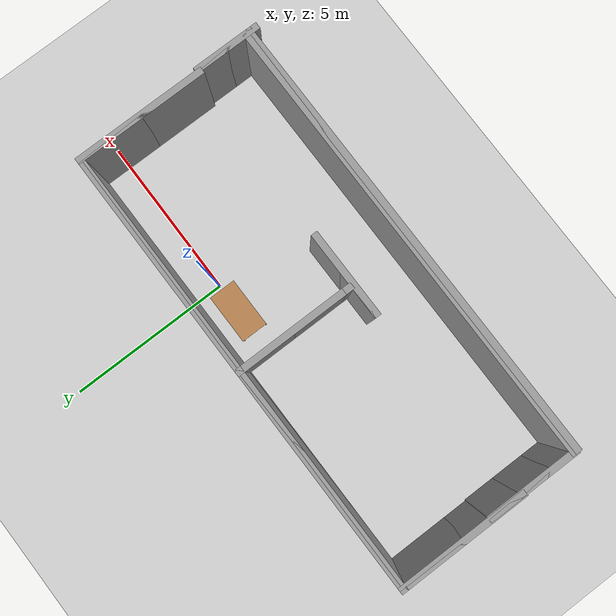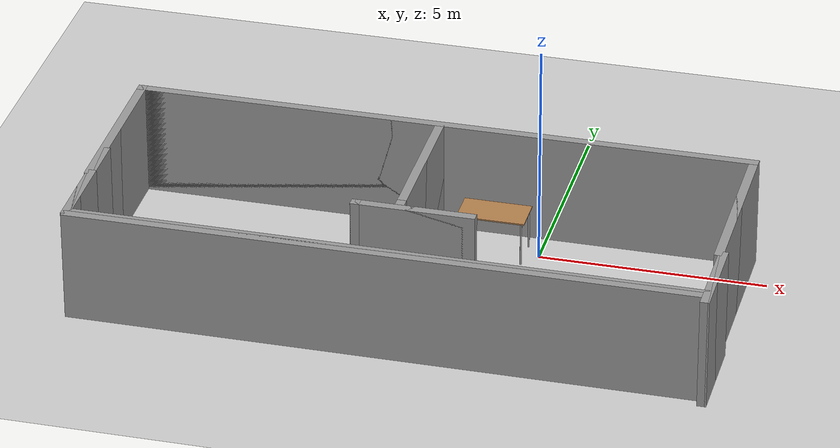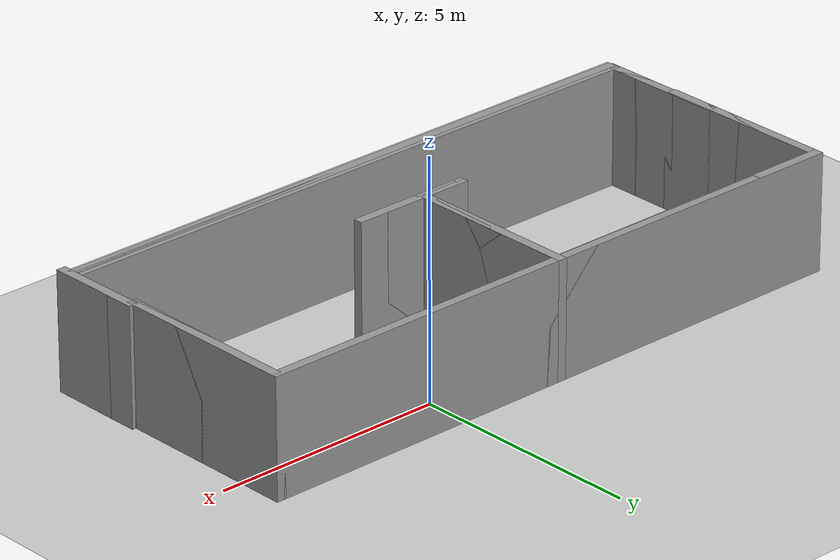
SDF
<sdf version="1.4">
 <world name="default">
  <light name="sun" type="directional">
   <pose>0 0 10 0 -0 0</pose>
   <diffuse>0.8 0.8 0.8 1</diffuse>
   <specular>0.2 0.2 0.2 1</specular>
   <attenuation>
    <range>1000</range>
    <constant>0.9</constant>
    <linear>0.01</linear>
    <quadratic>0.001</quadratic>
   </attenuation>
   <direction>-0.5 0.1 -0.9</direction>
  </light>
  <model name="ground_plane">
   <static>1</static>
   <link name="link">
    <collision name="collision">
     <geometry><plane><normal>0 0 1</normal><size>100 100</size></plane></geometry>
     <surface><friction><ode><mu>100</mu><mu2>50</mu2></ode></friction></surface>
    </collision>
    <visual name="visual">
     <cast_shadows>0</cast_shadows>
     <geometry><plane><normal>0 0 1</normal><size>100 100</size></plane></geometry>
     <material>
      <script><uri>file://media/materials/scripts/gazebo.material</uri><name>Gazebo/Grey</name></script>
     </material>
    </visual>
    <velocity_decay><linear>0</linear><angular>0</angular></velocity_decay>
   </link>
  </model>
  <physics type="ode">
   <max_step_size>0.001</max_step_size>
   <real_time_factor>1</real_time_factor>
   <real_time_update_rate>1000</real_time_update_rate>
   <gravity>0 0 -9.8</gravity>
  </physics>
  <scene><ambient>0.4 0.4 0.4 1</ambient><background>0.7 0.7 0.7 1</background><shadows>1</shadows></scene>
  <spherical_coordinates>
   <surface_model>EARTH_WGS84</surface_model>
   <latitude_deg>0</latitude_deg>
   <longitude_deg>0</longitude_deg>
   <elevation>0</elevation>
   <heading_deg>0</heading_deg>
  </spherical_coordinates>
  <model name="warehouse2">
   <link name="Wall_0">
    <collision name="Wall_0_Collision">
     <geometry><box><size>3.98135 0.2 2.5</size></box></geometry>
     <pose>0 0 1.25 0 -0 0</pose>
    </collision>
    <visual name="Wall_0_Visual">
     <pose>0 0 1.25 0 -0 0</pose>
     <geometry><box><size>3.98135 0.2 2.5</size></box></geometry>
     <material>
      <script><uri>file://media/materials/scripts/gazebo.material</uri><name>Gazebo/Grey</name></script>
     </material>
    </visual>
    <velocity_decay><linear>0</linear><angular>0</angular></velocity_decay>
    <pose>-9.14371 -1.01602 0 0 0 -1.5708</pose>
   </link>
   <link name="Wall_1">
    <collision name="Wall_1_Collision">
     <geometry><box><size>3.98135 0.2 2.5</size></box></geometry>
     <pose>0 0 1.25 0 -0 0</pose>
    </collision>
    <visual name="Wall_1_Visual">
     <pose>0 0 1.25 0 -0 0</pose>
     <geometry><box><size>3.98135 0.2 2.5</size></box></geometry>
     <material>
      <script><uri>file://media/materials/scripts/gazebo.material</uri><name>Gazebo/Grey</name></script>
     </material>
    </visual>
    <velocity_decay><linear>0</linear><angular>0</angular></velocity_decay>
    <pose>-9.14371 -1.01602 0 0 -0 1.5708</pose>
   </link>
   <link name="Wall_11">
    <collision name="Wall_11_Collision">
     <geometry><box><size>1.87581 0.2 2.5</size></box></geometry>
     <pose>0 0 1.25 0 -0 0</pose>
    </collision>
    <visual name="Wall_11_Visual">
     <pose>0 0 1.25 0 -0 0</pose>
     <geometry><box><size>1.87581 0.2 2.5</size></box></geometry>
     <material>
      <script><uri>file://media/materials/scripts/gazebo.material</uri><name>Gazebo/Grey</name></script>
     </material>
    </visual>
    <velocity_decay><linear>0</linear><angular>0</angular></velocity_decay>
    <pose>-9.11487 -3.77513 0 0 0 -1.5708</pose>
   </link>
   <link name="Wall_12">
    <collision name="Wall_12_Collision">
     <geometry><box><size>1.87581 0.2 2.5</size></box></geometry>
     <pose>0 0 1.25 0 -0 0</pose>
    </collision>
    <visual name="Wall_12_Visual">
     <pose>0 0 1.25 0 -0 0</pose>
     <geometry><box><size>1.87581 0.2 2.5</size></box></geometry>
     <material>
      <script><uri>file://media/materials/scripts/gazebo.material</uri><name>Gazebo/Grey</name></script>
     </material>
    </visual>
    <velocity_decay><linear>0</linear><angular>0</angular></velocity_decay>
    <pose>-9.11487 -3.77513 0 0 -0 1.5708</pose>
   </link>
   <link name="Wall_13">
    <collision name="Wall_13_Collision">
     <geometry><box><size>1.18421 0.2 2.5</size></box></geometry>
     <pose>0 0 1.25 0 -0 0</pose>
    </collision>
    <visual name="Wall_13_Visual">
     <pose>0 0 1.25 0 -0 0</pose>
     <geometry><box><size>1.18421 0.2 2.5</size></box></geometry>
     <material>
      <script><uri>file://media/materials/scripts/gazebo.material</uri><name>Gazebo/Grey</name></script>
     </material>
    </visual>
    <velocity_decay><linear>0</linear><angular>0</angular></velocity_decay>
    <pose>-9.11487 -2.44512 0 0 -0 1.5708</pose>
   </link>
   <link name="Wall_15">
    <collision name="Wall_15_Collision">
     <geometry><box><size>2.06201 0.2 2.5</size></box></geometry>
     <pose>0 0 1.25 0 -0 0</pose>
    </collision>
    <visual name="Wall_15_Visual">
     <pose>0 0 1.25 0 -0 0</pose>
     <geometry><box><size>2.06201 0.2 2.5</size></box></geometry>
     <material>
      <script><uri>file://media/materials/scripts/gazebo.material</uri><name>Gazebo/Grey</name></script>
     </material>
    </visual>
    <velocity_decay><linear>0</linear><angular>0</angular></velocity_decay>
    <pose>4.55764 -3.94803 0 0 0 -1.5708</pose>
   </link>
   <link name="Wall_16">
    <collision name="Wall_16_Collision">
     <geometry><box><size>2.06201 0.2 2.5</size></box></geometry>
     <pose>0 0 1.25 0 -0 0</pose>
    </collision>
    <visual name="Wall_16_Visual">
     <pose>0 0 1.25 0 -0 0</pose>
     <geometry><box><size>2.06201 0.2 2.5</size></box></geometry>
     <material>
      <script><uri>file://media/materials/scripts/gazebo.material</uri><name>Gazebo/Grey</name></script>
     </material>
    </visual>
    <velocity_decay><linear>0</linear><angular>0</angular></velocity_decay>
    <pose>4.55764 -3.94803 0 0 -0 1.5708</pose>
   </link>
   <link name="Wall_17">
    <collision name="Wall_17_Collision">
     <geometry><box><size>2.06201 0.2 2.5</size></box></geometry>
     <pose>0 0 1.25 0 -0 0</pose>
    </collision>
    <visual name="Wall_17_Visual">
     <pose>0 0 1.25 0 -0 0</pose>
     <geometry><box><size>2.06201 0.2 2.5</size></box></geometry>
     <material>
      <script><uri>file://media/materials/scripts/gazebo.material</uri><name>Gazebo/Grey</name></script>
     </material>
    </visual>
    <velocity_decay><linear>0</linear><angular>0</angular></velocity_decay>
    <pose>4.55764 -3.94803 0 0 0 -1.5708</pose>
   </link>
   <link name="Wall_19">
    <collision name="Wall_19_Collision">
     <geometry><box><size>2.70042 0.2 2.5</size></box></geometry>
     <pose>0 0 1.25 0 -0 0</pose>
    </collision>
    <visual name="Wall_19_Visual">
     <pose>0 0 1.25 0 -0 0</pose>
     <geometry><box><size>2.70042 0.2 2.5</size></box></geometry>
     <material>
      <script><uri>file://media/materials/scripts/gazebo.material</uri><name>Gazebo/Grey</name></script>
     </material>
    </visual>
    <velocity_decay><linear>0</linear><angular>0</angular></velocity_decay>
    <pose>-2.09241 -2.77762 0 0 -0 0</pose>
   </link>
   <link name="Wall_2">
    <collision name="Wall_2_Collision">
     <geometry><box><size>13.8169 0.2 2.5</size></box></geometry>
     <pose>0 0 1.25 0 -0 0</pose>
    </collision>
    <visual name="Wall_2_Visual">
     <pose>0 0 1.25 0 -0 0</pose>
     <geometry><box><size>13.8169 0.2 2.5</size></box></geometry>
     <material>
      <script><uri>file://media/materials/scripts/gazebo.material</uri><name>Gazebo/Grey</name></script>
     </material>
    </visual>
    <velocity_decay><linear>0</linear><angular>0</angular></velocity_decay>
    <pose>-2.33527 0.874656 0 0 -0 0</pose>
   </link>
   <link name="Wall_20">
    <collision name="Wall_20_Collision">
     <geometry><box><size>2.70042 0.2 2.5</size></box></geometry>
     <pose>0 0 1.25 0 -0 0</pose>
    </collision>
    <visual name="Wall_20_Visual">
     <pose>0 0 1.25 0 -0 0</pose>
     <geometry><box><size>2.70042 0.2 2.5</size></box></geometry>
     <material>
      <script><uri>file://media/materials/scripts/gazebo.material</uri><name>Gazebo/Grey</name></script>
     </material>
    </visual>
    <velocity_decay><linear>0</linear><angular>0</angular></velocity_decay>
    <pose>-2.09241 -2.77762 0 0 -0 3.14159</pose>
   </link>
   <link name="Wall_21">
    <collision name="Wall_21_Collision">
     <geometry><box><size>0.2 0.2 2.5</size></box></geometry>
     <pose>0 0 1.25 0 -0 0</pose>
    </collision>
    <visual name="Wall_21_Visual">
     <pose>0 0 1.25 0 -0 0</pose>
     <geometry><box><size>0.2 0.2 2.5</size></box></geometry>
     <material>
      <script><uri>file://media/materials/scripts/gazebo.material</uri><name>Gazebo/Grey</name></script>
     </material>
    </visual>
    <velocity_decay><linear>0</linear><angular>0</angular></velocity_decay>
    <pose>-3.34262 -2.77762 0 0 -0 0</pose>
   </link>
   <link name="Wall_22">
    <collision name="Wall_22_Collision">
     <geometry><box><size>0.2 0.2 2.5</size></box></geometry>
     <pose>0 0 1.25 0 -0 0</pose>
    </collision>
    <visual name="Wall_22_Visual">
     <pose>0 0 1.25 0 -0 0</pose>
     <geometry><box><size>0.2 0.2 2.5</size></box></geometry>
     <material>
      <script><uri>file://media/materials/scripts/gazebo.material</uri><name>Gazebo/Grey</name></script>
     </material>
    </visual>
    <velocity_decay><linear>0</linear><angular>0</angular></velocity_decay>
    <pose>-3.34262 -2.77762 0 0 -0 0</pose>
   </link>
   <link name="Wall_23">
    <collision name="Wall_23_Collision">
     <geometry><box><size>0.2 0.2 2.5</size></box></geometry>
     <pose>0 0 1.25 0 -0 0</pose>
    </collision>
    <visual name="Wall_23_Visual">
     <pose>0 0 1.25 0 -0 0</pose>
     <geometry><box><size>0.2 0.2 2.5</size></box></geometry>
     <material>
      <script><uri>file://media/materials/scripts/gazebo.material</uri><name>Gazebo/Grey</name></script>
     </material>
    </visual>
    <velocity_decay><linear>0</linear><angular>0</angular></velocity_decay>
    <pose>-3.34262 -2.77762 0 0 -0 0</pose>
   </link>
   <link name="Wall_25">
    <collision name="Wall_25_Collision">
     <geometry><box><size>13.8459 0.2 2.5</size></box></geometry>
     <pose>0 0 1.25 0 -0 0</pose>
    </collision>
    <visual name="Wall_25_Visual">
     <pose>0 0 1.25 0 -0 0</pose>
     <geometry><box><size>13.8459 0.2 2.5</size></box></geometry>
     <material>
      <script><uri>file://media/materials/scripts/gazebo.material</uri><name>Gazebo/Grey</name></script>
     </material>
    </visual>
    <velocity_decay><linear>0</linear><angular>0</angular></velocity_decay>
    <pose>-2.26532 -4.69284 0 0 -0 0</pose>
   </link>
   <link name="Wall_27">
    <collision name="Wall_27_Collision">
     <geometry><box><size>13.7661 0.2 2.5</size></box></geometry>
     <pose>0 0 1.25 0 -0 0</pose>
    </collision>
    <visual name="Wall_27_Visual">
     <pose>0 0 1.25 0 -0 0</pose>
     <geometry><box><size>13.7661 0.2 2.5</size></box></geometry>
     <material>
      <script><uri>file://media/materials/scripts/gazebo.material</uri><name>Gazebo/Grey</name></script>
     </material>
    </visual>
    <velocity_decay><linear>0</linear><angular>0</angular></velocity_decay>
    <pose>-2.30522 -4.58644 0 0 -0 0</pose>
   </link>
   <link name="Wall_3">
    <collision name="Wall_3_Collision">
     <geometry><box><size>4.06181 0.2 2.5</size></box></geometry>
     <pose>0 0 1.25 0 -0 0</pose>
    </collision>
    <visual name="Wall_3_Visual">
     <pose>0 0 1.25 0 -0 0</pose>
     <geometry><box><size>4.06181 0.2 2.5</size></box></geometry>
     <material>
      <script><uri>file://media/materials/scripts/gazebo.material</uri><name>Gazebo/Grey</name></script>
     </material>
    </visual>
    <velocity_decay><linear>0</linear><angular>0</angular></velocity_decay>
    <pose>4.47318 -1.05625 0 0 0 -1.5708</pose>
   </link>
   <link name="Wall_4">
    <collision name="Wall_4_Collision">
     <geometry><box><size>4.06181 0.2 2.5</size></box></geometry>
     <pose>0 0 1.25 0 -0 0</pose>
    </collision>
    <visual name="Wall_4_Visual">
     <pose>0 0 1.25 0 -0 0</pose>
     <geometry><box><size>4.06181 0.2 2.5</size></box></geometry>
     <material>
      <script><uri>file://media/materials/scripts/gazebo.material</uri><name>Gazebo/Grey</name></script>
     </material>
    </visual>
    <velocity_decay><linear>0</linear><angular>0</angular></velocity_decay>
    <pose>4.47318 -1.05625 0 0 -0 1.5708</pose>
   </link>
   <link name="Wall_5">
    <collision name="Wall_5_Collision">
     <geometry><box><size>13.8169 0.2 2.5</size></box></geometry>
     <pose>0 0 1.25 0 -0 0</pose>
    </collision>
    <visual name="Wall_5_Visual">
     <pose>0 0 1.25 0 -0 0</pose>
     <geometry><box><size>13.8169 0.2 2.5</size></box></geometry>
     <material>
      <script><uri>file://media/materials/scripts/gazebo.material</uri><name>Gazebo/Grey</name></script>
     </material>
    </visual>
    <velocity_decay><linear>0</linear><angular>0</angular></velocity_decay>
    <pose>-2.33527 0.874656 0 0 -0 3.14159</pose>
   </link>
   <link name="Wall_6">
    <collision name="Wall_6_Collision">
     <geometry><box><size>6.9321 0.2 2.5</size></box></geometry>
     <pose>0 0 1.25 0 -0 0</pose>
    </collision>
    <visual name="Wall_6_Visual">
     <pose>0 0 1.25 0 -0 0</pose>
     <geometry><box><size>6.9321 0.2 2.5</size></box></geometry>
     <material>
      <script><uri>file://media/materials/scripts/gazebo.material</uri><name>Gazebo/Grey</name></script>
     </material>
    </visual>
    <velocity_decay><linear>0</linear><angular>0</angular></velocity_decay>
    <pose>-5.77767 0.874656 0 0 -0 0</pose>
   </link>
   <link name="Wall_7">
    <collision name="Wall_7_Collision">
     <geometry><box><size>3.45371 0.2 2.5</size></box></geometry>
     <pose>0 0 1.25 0 -0 0</pose>
    </collision>
    <visual name="Wall_7_Visual">
     <pose>0 0 1.25 0 -0 0</pose>
     <geometry><box><size>3.45371 0.2 2.5</size></box></geometry>
     <material>
      <script><uri>file://media/materials/scripts/gazebo.material</uri><name>Gazebo/Grey</name></script>
     </material>
    </visual>
    <velocity_decay><linear>0</linear><angular>0</angular></velocity_decay>
    <pose>-2.41162 -0.751982 0 0 0 -1.5708</pose>
   </link>
   <link name="Wall_8">
    <collision name="Wall_8_Collision">
     <geometry><box><size>3.36542 0.2 2.5</size></box></geometry>
     <pose>0 0 1.25 0 -0 0</pose>
    </collision>
    <visual name="Wall_8_Visual">
     <pose>0 0 1.25 0 -0 0</pose>
     <geometry><box><size>3.36542 0.2 2.5</size></box></geometry>
     <material>
      <script><uri>file://media/materials/scripts/gazebo.material</uri><name>Gazebo/Grey</name></script>
     </material>
    </visual>
    <velocity_decay><linear>0</linear><angular>0</angular></velocity_decay>
    <pose>-2.41162 -0.795908 0 0 -0 1.5708</pose>
   </link>
   <link name="Wall_9">
    <collision name="Wall_9_Collision">
     <geometry><box><size>3.63143 0.2 2.5</size></box></geometry>
     <pose>0 0 1.25 0 -0 0</pose>
    </collision>
    <visual name="Wall_9_Visual">
     <pose>0 0 1.25 0 -0 0</pose>
     <geometry><box><size>3.63143 0.2 2.5</size></box></geometry>
     <material>
      <script><uri>file://media/materials/scripts/gazebo.material</uri><name>Gazebo/Grey</name></script>
     </material>
    </visual>
    <velocity_decay><linear>0</linear><angular>0</angular></velocity_decay>
    <pose>-2.41162 -0.928909 0 0 0 -1.5708</pose>
   </link>
   <static>1</static>
  </model>
  <model name="table">
   <static>1</static>
   <link name="link">
    <collision name="surface">
     <pose>0 0 1 0 -0 0</pose>
     <geometry><box><size>1.5 0.8 0.03</size></box></geometry>
     <surface><friction><ode><mu>0.6</mu><mu2>0.6</mu2></ode></friction></surface>
    </collision>
    <visual name="visual1">
     <pose>0 0 1 0 -0 0</pose>
     <geometry><box><size>1.5 0.8 0.03</size></box></geometry>
     <material>
      <script><uri>file://media/materials/scripts/gazebo.material</uri><name>Gazebo/Wood</name></script>
     </material>
    </visual>
    <collision name="front_left_leg">
     <pose>0.68 0.38 0.5 0 -0 0</pose>
     <geometry><cylinder><radius>0.02</radius><length>1</length></cylinder></geometry>
    </collision>
    <visual name="front_left_leg">
     <pose>0.68 0.38 0.5 0 -0 0</pose>
     <geometry><cylinder><radius>0.02</radius><length>1</length></cylinder></geometry>
     <material>
      <script><uri>file://media/materials/scripts/gazebo.material</uri><name>Gazebo/Grey</name></script>
     </material>
    </visual>
    <collision name="front_right_leg">
     <pose>0.68 -0.38 0.5 0 -0 0</pose>
     <geometry><cylinder><radius>0.02</radius><length>1</length></cylinder></geometry>
    </collision>
    <visual name="front_right_leg">
     <pose>0.68 -0.38 0.5 0 -0 0</pose>
     <geometry><cylinder><radius>0.02</radius><length>1</length></cylinder></geometry>
     <material>
      <script><uri>file://media/materials/scripts/gazebo.material</uri><name>Gazebo/Grey</name></script>
     </material>
    </visual>
    <collision name="back_right_leg">
     <pose>-0.68 -0.38 0.5 0 -0 0</pose>
     <geometry><cylinder><radius>0.02</radius><length>1</length></cylinder></geometry>
    </collision>
    <visual name="back_right_leg">
     <pose>-0.68 -0.38 0.5 0 -0 0</pose>
     <geometry><cylinder><radius>0.02</radius><length>1</length></cylinder></geometry>
     <material>
      <script><uri>file://media/materials/scripts/gazebo.material</uri><name>Gazebo/Grey</name></script>
     </material>
    </visual>
    <collision name="back_left_leg">
     <pose>-0.68 0.38 0.5 0 -0 0</pose>
     <geometry><cylinder><radius>0.02</radius><length>1</length></cylinder></geometry>
    </collision>
    <visual name="back_left_leg">
     <pose>-0.68 0.38 0.5 0 -0 0</pose>
     <geometry><cylinder><radius>0.02</radius><length>1</length></cylinder></geometry>
     <material>
      <script><uri>file://media/materials/scripts/gazebo.material</uri><name>Gazebo/Grey</name></script>
     </material>
    </visual>
    <velocity_decay><linear>0</linear><angular>0</angular></velocity_decay>
   </link>
   <pose>-1 0 0 0 -0 0</pose>
  </model>
 </world>
</sdf>
